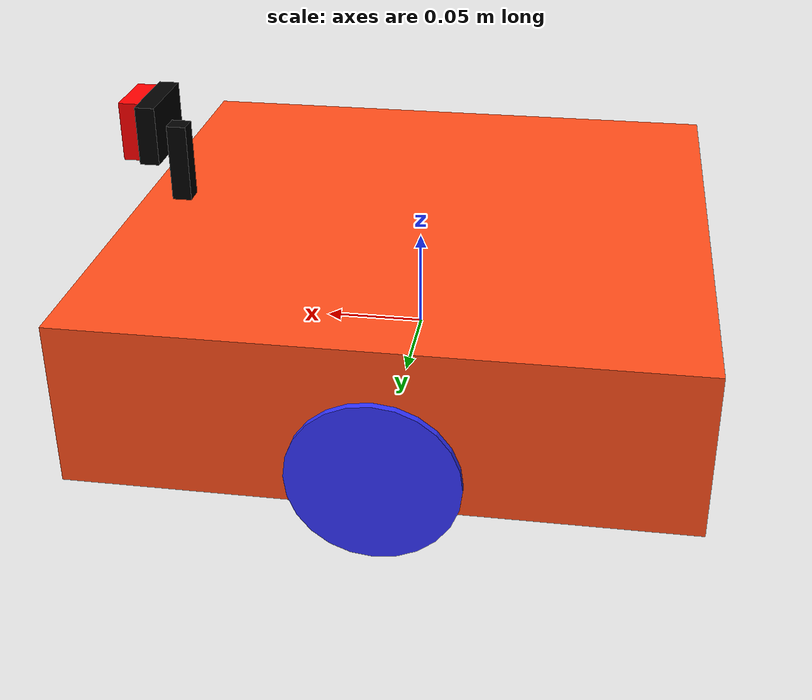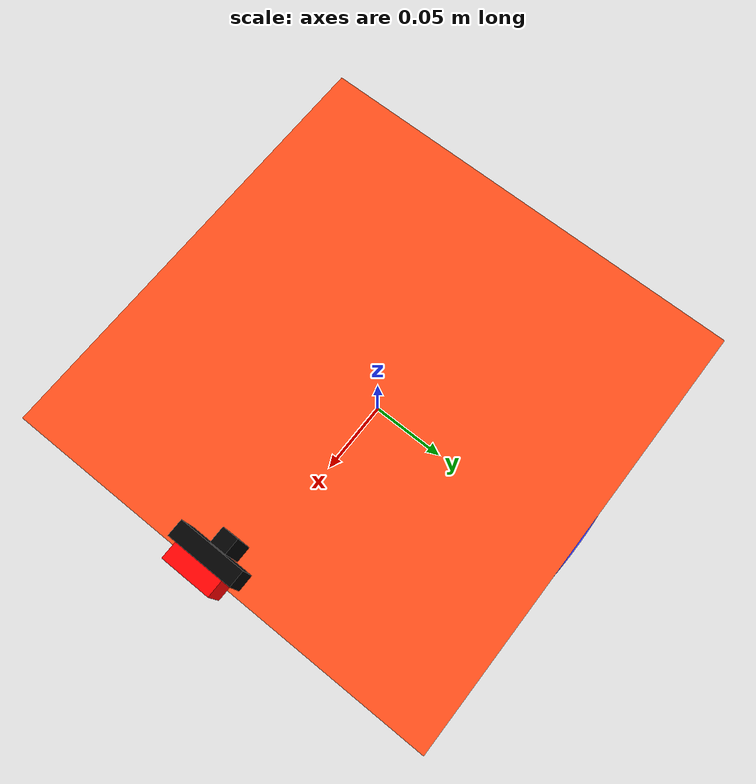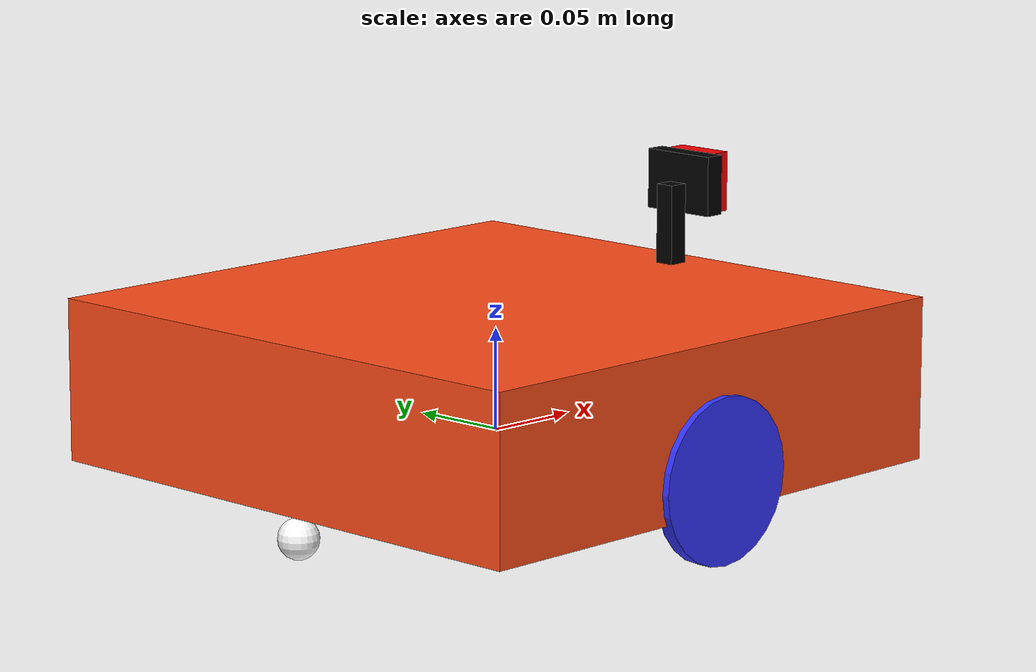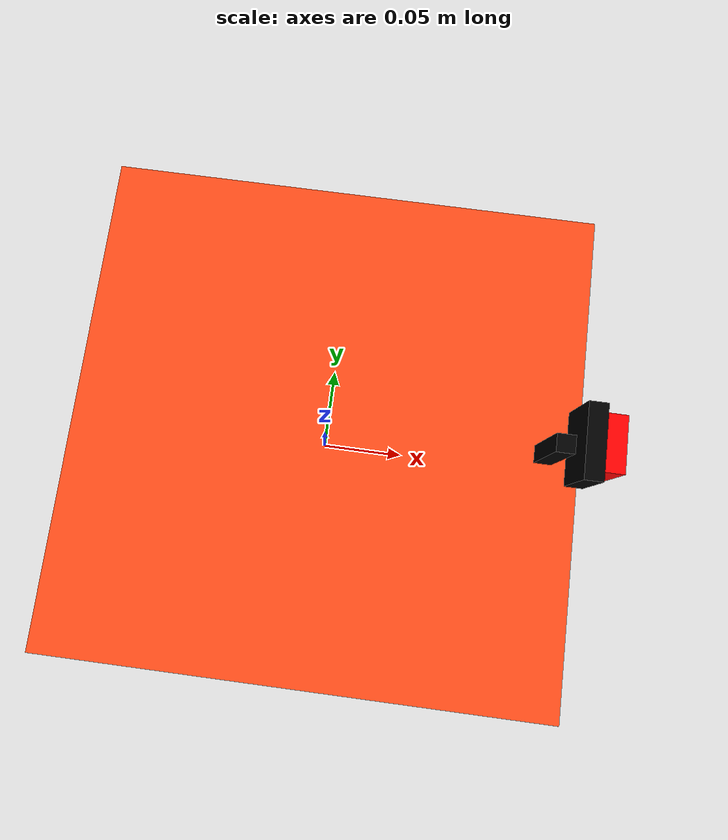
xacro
<?xml version="1.0"?>
<robot xmlns:xacro="http://www.ros.org/wiki/xacro"  name="robot">

    <xacro:arg name="use_ros2_control" default="true"/>
    <xacro:arg name="sim_mode" default="true"/>

    <xacro:include filename="robot_core.xacro" />

    <xacro:if value="$(arg use_ros2_control)">
        <xacro:include filename="ros2_control.xacro" />
    </xacro:if>
    <xacro:unless value="$(arg use_ros2_control)">
        <xacro:include filename="gazebo_control.xacro" />
    </xacro:unless>
    <!-- xacro:include filename="lidar.xacro" / -->
    <xacro:include filename="camera.xacro" />

</robot>

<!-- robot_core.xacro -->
<robot xmlns:xacro="http://www.ros.org/wiki/xacro" >

    <xacro:include filename="inertial_macros.xacro"/>

    <xacro:property name="chassis_length" value="0.29"/>
    <xacro:property name="chassis_width" value="0.29"/>
    <xacro:property name="chassis_height" value="0.08"/>
    <xacro:property name="chassis_mass" value="1.0"/>
    <xacro:property name="wheel_radius" value="0.04"/>
    <xacro:property name="wheel_thickness" value="0.007"/>
    <xacro:property name="wheel_mass" value="0.05"/>
    <xacro:property name="wheel_offset_x" value="0.145"/>
    <xacro:property name="wheel_offset_y" value="0.145"/>
    <xacro:property name="wheel_offset_z" value="0.015"/>
    <xacro:property name="caster_wheel_radius" value="0.01"/>
    <xacro:property name="caster_wheel_mass" value="0.01"/>
    <xacro:property name="caster_wheel_back_offset_x" value="0.015"/>
    <xacro:property name="caster_wheel_front_offset_x" value="0.26"/>
    <xacro:property name="caster_wheel_offset_z" value="${wheel_offset_z - wheel_radius + caster_wheel_radius}"/>

    <material name="white">
        <color rgba="1 1 1 1" />
    </material>

    <material name="orange">
        <color rgba="1 0.3 0.1 1"/>
    </material>

    <material name="blue">
        <color rgba="0.2 0.2 1 1"/>
    </material>

    <material name="black">
        <color rgba="0 0 0 1"/>
    </material>

    <material name="red">
        <color rgba="1 0 0 1"/>
    </material>

    <!-- BASE LINK -->

    <link name="base_link">

    </link>

    <!-- BASE_FOOTPRINT LINK -->

    <joint name="base_footprint_joint" type="fixed">
        <parent link="base_link"/>
        <child link="base_footprint"/>
        <origin xyz="0 0 0" rpy="0 0 0"/>
    </joint>

    <link name="base_footprint">
    </link>

    <!-- CHASSIS LINK -->

    <joint name="chassis_joint" type="fixed">
        <parent link="base_link"/>
        <child link="chassis"/>
        <origin xyz="${-wheel_offset_x} 0 ${-wheel_offset_z}"/>
    </joint>

    <link name="chassis">
        <visual>
            <origin xyz="${chassis_length/2} 0 ${chassis_height/2}"/>
            <geometry>
                <box size="${chassis_length} ${chassis_width} ${chassis_height}"/>
            </geometry>
            <material name="orange"/>
        </visual>
        <collision>
            <origin xyz="${chassis_length/2} 0 ${chassis_height/2}"/>
            <geometry>
                <box size="${chassis_length} ${chassis_width} ${chassis_height}"/>
            </geometry>
        </collision>
        <xacro:inertial_box mass="0.5" x="${chassis_length}" y="${chassis_width}" z="${chassis_height}">
            <origin xyz="${chassis_length/2} 0 ${chassis_height/2}" rpy="0 0 0"/>
        </xacro:inertial_box>
    </link>

    <gazebo reference="chassis">
        <material>Gazebo/Orange</material>
    </gazebo>

    <!-- LEFT WHEEL LINK -->

    <joint name="left_wheel" type="continuous">
        <parent link="base_link"/>
        <child link="left_wheel_link"/>
        <origin xyz="0 ${wheel_offset_y} 0" rpy="-${pi/2} 0 0" />
        <axis xyz="0 0 1"/>
    </joint>

    <link name="left_wheel_link">
        <visual>
            <geometry>
                <cylinder radius="${wheel_radius}" length="${wheel_thickness}"/>
            </geometry>
            <material name="blue"/>
        </visual>
        <collision>
            <geometry>
                <sphere radius="${wheel_radius}"/>
            </geometry>
        </collision>
        <xacro:inertial_cylinder mass="${wheel_mass}" length="${wheel_thickness}" radius="${wheel_radius}">
            <origin xyz="0 0 0" rpy="0 0 0"/>
        </xacro:inertial_cylinder>
    </link>

    <gazebo reference="left_wheel_link">
        <material>Gazebo/Blue</material>
    </gazebo>

    <!-- RIGHT WHEEL LINK -->

    <joint name="right_wheel" type="continuous">
        <parent link="base_link"/>
        <child link="right_wheel_link"/>
        <origin xyz="0 ${-wheel_offset_y} 0" rpy="${pi/2} 0 0" />
        <axis xyz="0 0 -1"/>
    </joint>

    <link name="right_wheel_link">
        <visual>
            <geometry>
                <cylinder radius="${wheel_radius}" length="${wheel_thickness}"/>
            </geometry>
            <material name="blue"/>
        </visual>
        <collision>
            <geometry>
                <sphere radius="${wheel_radius}"/>
            </geometry>
        </collision>
        <xacro:inertial_cylinder mass="${wheel_mass}" length="${wheel_thickness}" radius="${wheel_radius}">
            <origin xyz="0 0 0" rpy="0 0 0"/>
        </xacro:inertial_cylinder>
    </link>

    <gazebo reference="right_wheel_link">
        <material>Gazebo/Blue</material>
    </gazebo>

    <!-- CASTER WHEEL BACK LINK -->

    <joint name="caster_wheel_back_joint" type="fixed">
        <parent link="chassis"/>
        <child link="caster_wheel_back"/>
        <origin xyz="${caster_wheel_back_offset_x} 0 ${caster_wheel_offset_z}"/>
    </joint>

    <link name="caster_wheel_back">
        <visual>
            <geometry>
                <sphere radius="${caster_wheel_radius}"/>
            </geometry>
            <material name="white"/>
        </visual>
        <collision>
            <geometry>
                <sphere radius="${caster_wheel_radius}"/>
            </geometry>
        </collision>
        <xacro:inertial_sphere mass="${caster_wheel_mass}" radius="${caster_wheel_radius}">
            <origin xyz="0 0 0" rpy="0 0 0"/>
        </xacro:inertial_sphere>
    </link>

    <gazebo reference="caster_wheel_back">
        <material>Gazebo/White</material>
        <mu1 value="0.001"/>
        <mu2 value="0.001"/>
    </gazebo>

    <!-- CASTER WHEEL FRONT LINK -->

    <joint name="caster_wheel_front_joint" type="fixed">
        <parent link="chassis"/>
        <child link="caster_wheel_front"/>
        <origin xyz="${caster_wheel_front_offset_x} 0 ${caster_wheel_offset_z}"/>
    </joint>

    <link name="caster_wheel_front">
        <visual>
            <geometry>
                <sphere radius="${caster_wheel_radius}"/>
            </geometry>
            <material name="white"/>
        </visual>
        <collision>
            <geometry>
                <sphere radius="${caster_wheel_radius}"/>
            </geometry>
        </collision>
        <xacro:inertial_sphere mass="${caster_wheel_mass}" radius="${caster_wheel_radius}">
            <origin xyz="0 0 0" rpy="0 0 0"/>
        </xacro:inertial_sphere>
    </link>

    <gazebo reference="caster_wheel_front">
        <material>Gazebo/White</material>
        <mu1 value="0.001"/>
        <mu2 value="0.001"/>
    </gazebo>

</robot>

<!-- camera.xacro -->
<robot xmlns:xacro="http://www.ros.org/wiki/xacro" >

    <xacro:include filename="inertial_macros.xacro"/>

    <joint name="camera_pan_joint" type="revolute">
        <parent link="base_link"/>
        <child link="camera_pan"/>
        <origin xyz="0.125 0 0.08" rpy="0 0 0"/>
        <axis xyz="0 0 1"/>
        <limit effort="1000.0" lower="${-pi/2}" upper="${pi/2}" velocity="2.5"/>
        <joint_properties friction="1000" damping="10"/>
    </joint>

    <link name="camera_pan">
        <visual>
            <geometry>
                <box size="0.01 0.01 0.05"/>
            </geometry>
            <material name="black"/>
        </visual>
        <xacro:inertial_box mass="0.05" x="0.01 " y="0.01" z="0.05">
            <origin xyz="${0.01/2} 0 ${0.05/2}" rpy="0 0 0"/>
        </xacro:inertial_box>
    </link>

    <joint name="camera_tilt_joint" type="revolute">
        <parent link="camera_pan"/>
        <child link="camera_tilt"/>
        <origin xyz="0.01 0 0.025" rpy="0 0 0"/>
        <axis xyz="0 1 0"/>
        <limit effort="1000.0" lower="${-pi/2}" upper="${pi/2}" velocity="2.5"/>
        <joint_properties friction="1000" damping="10"/>
    </joint>

    <link name="camera_tilt">
        <visual>
            <geometry>
                <box size="0.01 0.04 0.03"/>
            </geometry>
            <material name="black"/>
        </visual>
        <xacro:inertial_box mass="0.01" x="0.01 " y="0.05" z="0.05">
            <origin xyz="${0.01/2} 0 ${0.05/2}" rpy="0 0 0"/>
        </xacro:inertial_box>
    </link>

    <joint name="camera_link_joint" type="fixed">
        <parent link="camera_tilt"/>
        <child link="camera_link"/>
        <origin xyz="0.01 0 0" rpy="0 0 0"/>
    </joint>

    <link name="camera_link">
        <visual>
            <geometry>
                <box size="0.01 0.03 0.03"/>
            </geometry>
            <material name="red"/>
        </visual>
    </link>

    <joint name="camera_optical_joint" type="fixed">
        <parent link="camera_link"/>
        <child link="camera_link_optical"/>
        <origin xyz="0 0 0" rpy="0 0 0"/>
    </joint>

    <link name="camera_link_optical"></link>

    <gazebo reference="camera_link">
        <material>Gazebo/Black</material>

        <sensor name="camera" type="camera">
            <pose> 0 0 0 0 0 0 </pose>
            <visualize>true</visualize>
            <update_rate>10</update_rate>
            <camera>
                <horizontal_fov>1.089</horizontal_fov>
                <image>
                    <format>R8G8B8</format>
                    <width>640</width>
                    <height>480</height>
                </image>
                <clip>
                    <near>0.05</near>
                    <far>8.0</far>
                </clip>
            </camera>
            <plugin name="camera_controller" filename="libgazebo_ros_camera.so">
                <frame_name>camera_link_optical</frame_name>
            </plugin>
        </sensor>
    </gazebo>

</robot>
